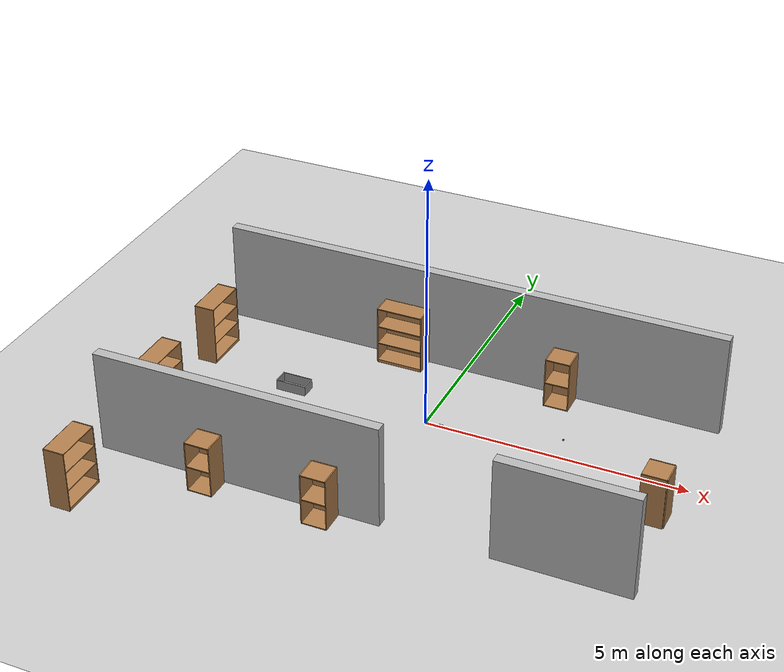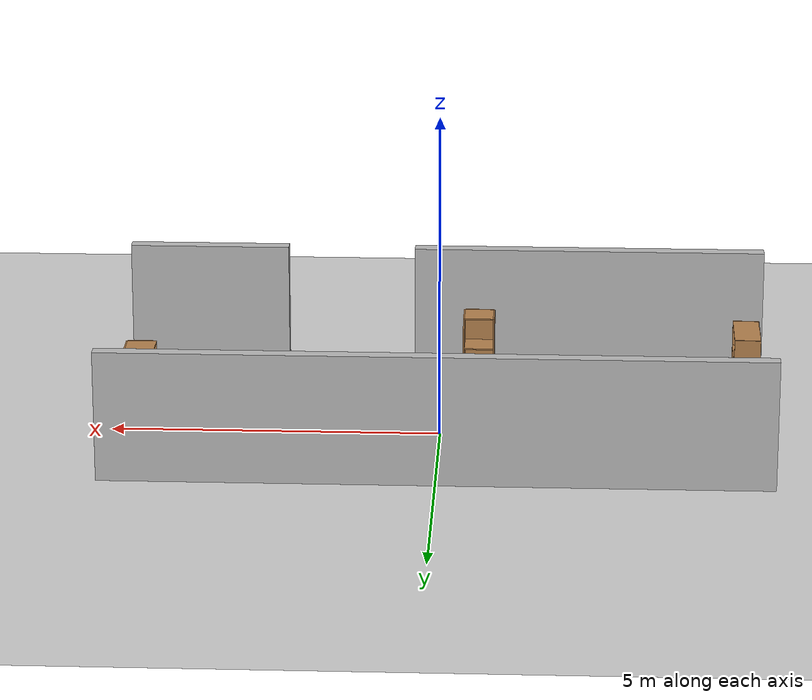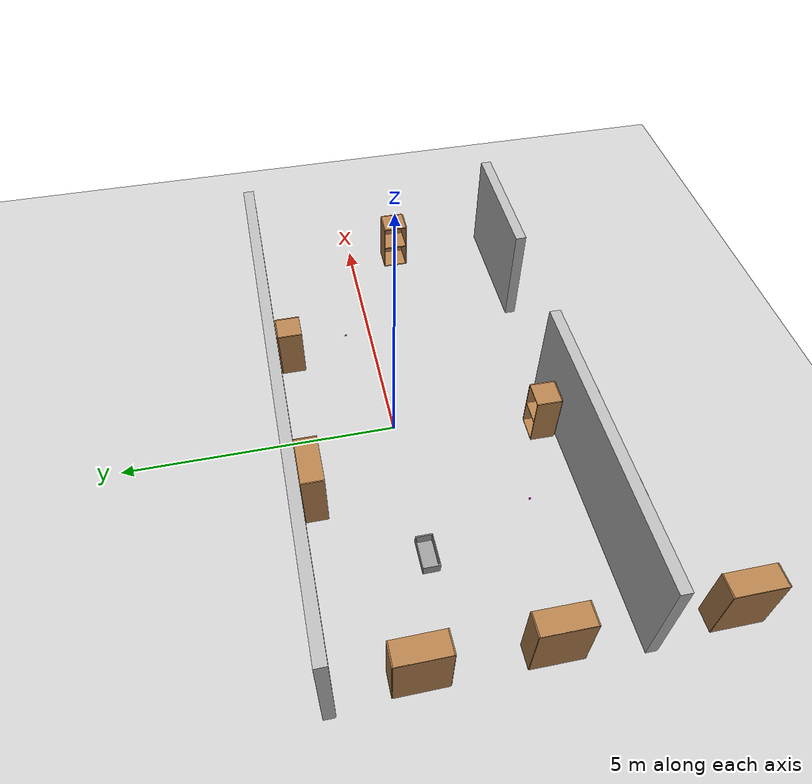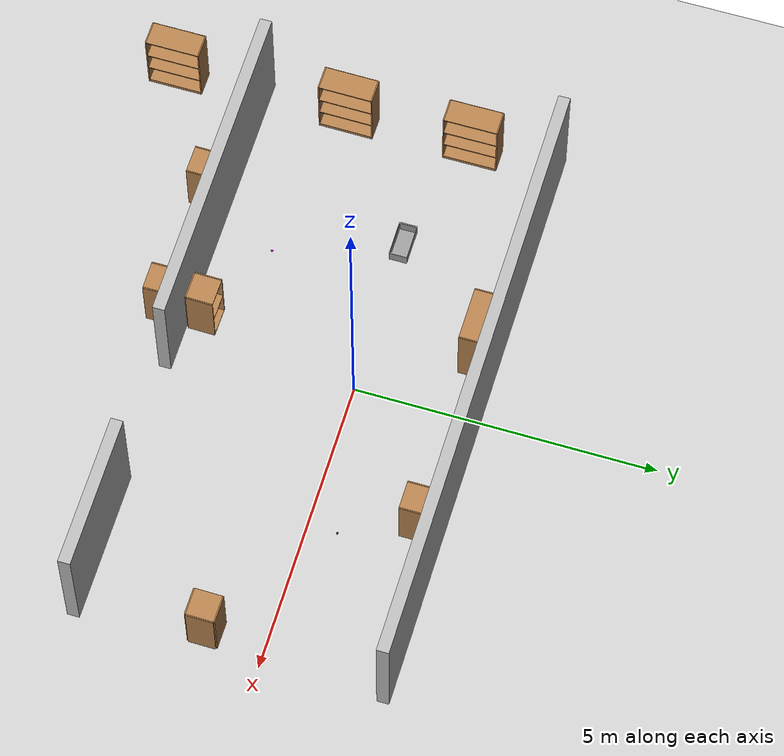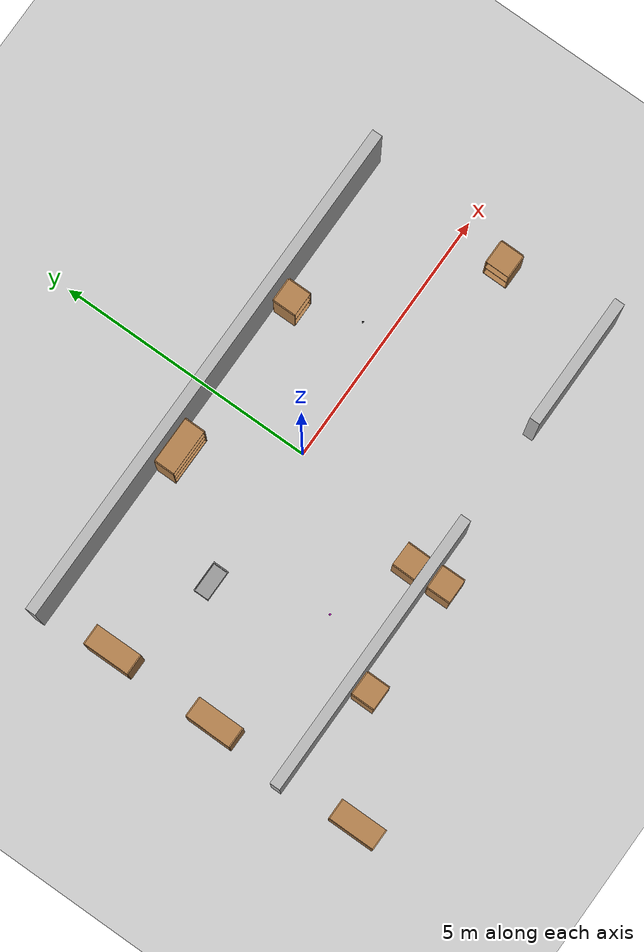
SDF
<sdf version="1.7">
 <world name="default">
  <model name="ground_plane">
   <static>1</static>
   <link name="link">
    <collision name="collision">
     <geometry><plane><normal>0 0 1</normal><size>100 100</size></plane></geometry>
     <surface><friction><ode><mu>100</mu><mu2>50</mu2></ode></friction></surface>
    </collision>
    <visual name="visual">
     <cast_shadows>0</cast_shadows>
     <geometry><plane><normal>0 0 1</normal><size>100 100</size></plane></geometry>
     <material>
      <script><uri>file://media/materials/scripts/gazebo.material</uri><name>Gazebo/Grey</name></script>
     </material>
    </visual>
    <velocity_decay><linear>0</linear><angular>0</angular></velocity_decay>
   </link>
  </model>
  <model name="wall_2_model">
   <pose>0 2 1 0 -0 0</pose>
   <static>1</static>
   <link name="wall_2_body">
    <inertial>
     <mass>1</mass>
     <inertia><ixx>1</ixx><ixy>0</ixy><ixz>0</ixz><iyy>1</iyy><iyz>0</iyz><izz>1</izz></inertia>
    </inertial>
    <collision name="collision"><geometry><box><size>10 0.2 2</size></box></geometry></collision>
    <visual name="visual"><geometry><box><size>10 0.2 2</size></box></geometry></visual>
    <velocity_decay><linear>0</linear><angular>0</angular></velocity_decay>
   </link>
  </model>
  <model name="wall_5_model">
   <pose>-2.25 -3 1 0 -0 0</pose>
   <static>1</static>
   <link name="wall_5_body">
    <inertial>
     <mass>1</mass>
     <inertia><ixx>1</ixx><ixy>0</ixy><ixz>0</ixz><iyy>1</iyy><iyz>0</iyz><izz>1</izz></inertia>
    </inertial>
    <collision name="collision"><geometry><box><size>5.5 0.2 2</size></box></geometry></collision>
    <visual name="visual"><geometry><box><size>5.5 0.2 2</size></box></geometry></visual>
    <velocity_decay><linear>0</linear><angular>0</angular></velocity_decay>
   </link>
  </model>
  <model name="wall_6_model">
   <pose>3.75 -3 1 0 -0 0</pose>
   <static>1</static>
   <link name="wall_6_body">
    <inertial>
     <mass>1</mass>
     <inertia><ixx>1</ixx><ixy>0</ixy><ixz>0</ixz><iyy>1</iyy><iyz>0</iyz><izz>1</izz></inertia>
    </inertial>
    <collision name="collision"><geometry><box><size>2.5 0.2 2</size></box></geometry></collision>
    <visual name="visual"><geometry><box><size>2.5 0.2 2</size></box></geometry></visual>
    <velocity_decay><linear>0</linear><angular>0</angular></velocity_decay>
   </link>
  </model>
  <model name="cabinet">
   <static>0</static>
   <link name="cabinet_bottom_plate">
    <inertial>
     <pose>0 0 -1 0 -0 0</pose>
     <inertia><ixx>2.05</ixx><ixy>0</ixy><ixz>0</ixz><iyy>2.05</iyy><iyz>0</iyz><izz>2.05</izz></inertia>
     <mass>25</mass>
    </inertial>
    <collision name="cabinet_bottom_plate_geom">
     <pose>0 0 0.01 0 -0 0</pose>
     <geometry><box><size>0.45 0.45 0.02</size></box></geometry>
    </collision>
    <visual name="cabinet_bottom_plate_geom_visual">
     <pose>0 0 0.01 0 -0 0</pose>
     <geometry><box><size>0.45 0.45 0.02</size></box></geometry>
     <material>
      <script><uri>file://media/materials/scripts/gazebo.material</uri><name>Gazebo/Wood</name></script>
     </material>
    </visual>
    <collision name="cabinet_bottom_plate_geom_cabinet_back_plate">
     <pose>0.235 0 0.51 0 -0 0</pose>
     <geometry><box><size>0.02 0.45 1.02</size></box></geometry>
    </collision>
    <visual name="cabinet_bottom_plate_geom_cabinet_back_plate_visual">
     <pose>0.235 0 0.51 0 -0 0</pose>
     <geometry><box><size>0.02 0.45 1.02</size></box></geometry>
     <material>
      <script><uri>file://media/materials/scripts/gazebo.material</uri><name>Gazebo/Wood</name></script>
     </material>
    </visual>
    <collision name="cabinet_bottom_plate_geom_cabinet_left_plate">
     <pose>0 0.235 0.51 0 -0 0</pose>
     <geometry><box><size>0.45 0.02 1.02</size></box></geometry>
    </collision>
    <visual name="cabinet_bottom_plate_geom_cabinet_left_plate_visual">
     <pose>0 0.235 0.51 0 -0 0</pose>
     <geometry><box><size>0.45 0.02 1.02</size></box></geometry>
     <material>
      <script><uri>file://media/materials/scripts/gazebo.material</uri><name>Gazebo/Wood</name></script>
     </material>
    </visual>
    <collision name="cabinet_bottom_plate_geom_cabinet_middle_plate">
     <pose>0 0 0.51 0 -0 0</pose>
     <geometry><box><size>0.45 0.45 0.02</size></box></geometry>
    </collision>
    <visual name="cabinet_bottom_plate_geom_cabinet_middle_plate_visual">
     <pose>0 0 0.51 0 -0 0</pose>
     <geometry><box><size>0.45 0.45 0.02</size></box></geometry>
     <material>
      <script><uri>file://media/materials/scripts/gazebo.material</uri><name>Gazebo/Wood</name></script>
     </material>
    </visual>
    <collision name="cabinet_bottom_plate_geom_cabinet_right_plate">
     <pose>0 -0.235 0.51 0 -0 0</pose>
     <geometry><box><size>0.45 0.02 1.02</size></box></geometry>
    </collision>
    <visual name="cabinet_bottom_plate_geom_cabinet_right_plate_visual">
     <pose>0 -0.235 0.51 0 -0 0</pose>
     <geometry><box><size>0.45 0.02 1.02</size></box></geometry>
     <material>
      <script><uri>file://media/materials/scripts/gazebo.material</uri><name>Gazebo/Wood</name></script>
     </material>
    </visual>
    <collision name="cabinet_bottom_plate_geom_cabinet_top_plate">
     <pose>0 0 1.01 0 -0 0</pose>
     <geometry><box><size>0.45 0.45 0.02</size></box></geometry>
    </collision>
    <visual name="cabinet_bottom_plate_geom_cabinet_top_plate_visual">
     <pose>0 0 1.01 0 -0 0</pose>
     <geometry><box><size>0.45 0.45 0.02</size></box></geometry>
     <material>
      <script><uri>file://media/materials/scripts/gazebo.material</uri><name>Gazebo/Wood</name></script>
     </material>
    </visual>
    <velocity_decay><linear>0</linear><angular>0</angular></velocity_decay>
   </link>
   <pose>2.00217 1.64704 -1e-06 -2e-06 1e-06 1.57264</pose>
  </model>
  <model name="bookshelf_0">
   <static>0</static>
   <link name="link">
    <inertial>
     <mass>1</mass>
     <inertia><ixx>1</ixx><ixy>0</ixy><ixz>0</ixz><iyy>1</iyy><iyz>0</iyz><izz>1</izz></inertia>
    </inertial>
    <collision name="back">
     <pose>0 0.005 0.6 0 -0 0</pose>
     <geometry><box><size>0.9 0.01 1.2</size></box></geometry>
    </collision>
    <visual name="visual1">
     <pose>0 0.005 0.6 0 -0 0</pose>
     <geometry><box><size>0.9 0.01 1.2</size></box></geometry>
     <material>
      <script><uri>file://media/materials/scripts/gazebo.material</uri><name>Gazebo/Wood</name></script>
     </material>
    </visual>
    <collision name="left_side">
     <pose>0.45 -0.195 0.6 0 -0 0</pose>
     <geometry><box><size>0.02 0.4 1.2</size></box></geometry>
    </collision>
    <visual name="visual2">
     <pose>0.45 -0.195 0.6 0 -0 0</pose>
     <geometry><box><size>0.02 0.4 1.2</size></box></geometry>
     <material>
      <script><uri>file://media/materials/scripts/gazebo.material</uri><name>Gazebo/Wood</name></script>
     </material>
    </visual>
    <collision name="right_side">
     <pose>-0.45 -0.195 0.6 0 -0 0</pose>
     <geometry><box><size>0.02 0.4 1.2</size></box></geometry>
    </collision>
    <visual name="visual3">
     <pose>-0.45 -0.195 0.6 0 -0 0</pose>
     <geometry><box><size>0.02 0.4 1.2</size></box></geometry>
     <material>
      <script><uri>file://media/materials/scripts/gazebo.material</uri><name>Gazebo/Wood</name></script>
     </material>
    </visual>
    <collision name="bottom">
     <pose>0 -0.195 0.03 0 -0 0</pose>
     <geometry><box><size>0.88 0.4 0.06</size></box></geometry>
    </collision>
    <visual name="visual4">
     <pose>0 -0.195 0.03 0 -0 0</pose>
     <geometry><box><size>0.88 0.4 0.06</size></box></geometry>
     <material>
      <script><uri>file://media/materials/scripts/gazebo.material</uri><name>Gazebo/Wood</name></script>
     </material>
    </visual>
    <collision name="top">
     <pose>0 -0.195 1.19 0 -0 0</pose>
     <geometry><box><size>0.88 0.4 0.02</size></box></geometry>
    </collision>
    <visual name="visual5">
     <pose>0 -0.195 1.19 0 -0 0</pose>
     <geometry><box><size>0.88 0.4 0.02</size></box></geometry>
     <material>
      <script><uri>file://media/materials/scripts/gazebo.material</uri><name>Gazebo/Wood</name></script>
     </material>
    </visual>
    <collision name="low_shelf">
     <pose>0 -0.195 0.43 0 -0 0</pose>
     <geometry><box><size>0.88 0.4 0.02</size></box></geometry>
    </collision>
    <visual name="visual6">
     <pose>0 -0.195 0.43 0 -0 0</pose>
     <geometry><box><size>0.88 0.4 0.02</size></box></geometry>
     <material>
      <script><uri>file://media/materials/scripts/gazebo.material</uri><name>Gazebo/Wood</name></script>
     </material>
    </visual>
    <collision name="high_shelf">
     <pose>0 -0.195 0.8 0 -0 0</pose>
     <geometry><box><size>0.88 0.4 0.02</size></box></geometry>
    </collision>
    <visual name="visual7">
     <pose>0 -0.195 0.8 0 -0 0</pose>
     <geometry><box><size>0.88 0.4 0.02</size></box></geometry>
     <material>
      <script><uri>file://media/materials/scripts/gazebo.material</uri><name>Gazebo/Wood</name></script>
     </material>
    </visual>
    <velocity_decay><linear>0</linear><angular>0</angular></velocity_decay>
   </link>
   <pose>-4.88413 -1.51974 1e-06 0 1e-06 1.56443</pose>
  </model>
  <model name="bookshelf_1">
   <static>0</static>
   <link name="link">
    <inertial>
     <mass>1</mass>
     <inertia><ixx>1</ixx><ixy>0</ixy><ixz>0</ixz><iyy>1</iyy><iyz>0</iyz><izz>1</izz></inertia>
    </inertial>
    <collision name="back">
     <pose>0 0.005 0.6 0 -0 0</pose>
     <geometry><box><size>0.9 0.01 1.2</size></box></geometry>
    </collision>
    <visual name="visual1">
     <pose>0 0.005 0.6 0 -0 0</pose>
     <geometry><box><size>0.9 0.01 1.2</size></box></geometry>
     <material>
      <script><uri>file://media/materials/scripts/gazebo.material</uri><name>Gazebo/Wood</name></script>
     </material>
    </visual>
    <collision name="left_side">
     <pose>0.45 -0.195 0.6 0 -0 0</pose>
     <geometry><box><size>0.02 0.4 1.2</size></box></geometry>
    </collision>
    <visual name="visual2">
     <pose>0.45 -0.195 0.6 0 -0 0</pose>
     <geometry><box><size>0.02 0.4 1.2</size></box></geometry>
     <material>
      <script><uri>file://media/materials/scripts/gazebo.material</uri><name>Gazebo/Wood</name></script>
     </material>
    </visual>
    <collision name="right_side">
     <pose>-0.45 -0.195 0.6 0 -0 0</pose>
     <geometry><box><size>0.02 0.4 1.2</size></box></geometry>
    </collision>
    <visual name="visual3">
     <pose>-0.45 -0.195 0.6 0 -0 0</pose>
     <geometry><box><size>0.02 0.4 1.2</size></box></geometry>
     <material>
      <script><uri>file://media/materials/scripts/gazebo.material</uri><name>Gazebo/Wood</name></script>
     </material>
    </visual>
    <collision name="bottom">
     <pose>0 -0.195 0.03 0 -0 0</pose>
     <geometry><box><size>0.88 0.4 0.06</size></box></geometry>
    </collision>
    <visual name="visual4">
     <pose>0 -0.195 0.03 0 -0 0</pose>
     <geometry><box><size>0.88 0.4 0.06</size></box></geometry>
     <material>
      <script><uri>file://media/materials/scripts/gazebo.material</uri><name>Gazebo/Wood</name></script>
     </material>
    </visual>
    <collision name="top">
     <pose>0 -0.195 1.19 0 -0 0</pose>
     <geometry><box><size>0.88 0.4 0.02</size></box></geometry>
    </collision>
    <visual name="visual5">
     <pose>0 -0.195 1.19 0 -0 0</pose>
     <geometry><box><size>0.88 0.4 0.02</size></box></geometry>
     <material>
      <script><uri>file://media/materials/scripts/gazebo.material</uri><name>Gazebo/Wood</name></script>
     </material>
    </visual>
    <collision name="low_shelf">
     <pose>0 -0.195 0.43 0 -0 0</pose>
     <geometry><box><size>0.88 0.4 0.02</size></box></geometry>
    </collision>
    <visual name="visual6">
     <pose>0 -0.195 0.43 0 -0 0</pose>
     <geometry><box><size>0.88 0.4 0.02</size></box></geometry>
     <material>
      <script><uri>file://media/materials/scripts/gazebo.material</uri><name>Gazebo/Wood</name></script>
     </material>
    </visual>
    <collision name="high_shelf">
     <pose>0 -0.195 0.8 0 -0 0</pose>
     <geometry><box><size>0.88 0.4 0.02</size></box></geometry>
    </collision>
    <visual name="visual7">
     <pose>0 -0.195 0.8 0 -0 0</pose>
     <geometry><box><size>0.88 0.4 0.02</size></box></geometry>
     <material>
      <script><uri>file://media/materials/scripts/gazebo.material</uri><name>Gazebo/Wood</name></script>
     </material>
    </visual>
    <velocity_decay><linear>0</linear><angular>0</angular></velocity_decay>
   </link>
   <pose>-4.88539 0.594654 -1e-06 0 3e-06 1.57477</pose>
  </model>
  <model name="cabinet_1">
   <static>0</static>
   <link name="cabinet_bottom_plate">
    <inertial>
     <pose>0 0 -1 0 -0 0</pose>
     <inertia><ixx>2.05</ixx><ixy>0</ixy><ixz>0</ixz><iyy>2.05</iyy><iyz>0</iyz><izz>2.05</izz></inertia>
     <mass>25</mass>
    </inertial>
    <collision name="cabinet_bottom_plate_geom">
     <pose>0 0 0.01 0 -0 0</pose>
     <geometry><box><size>0.45 0.45 0.02</size></box></geometry>
    </collision>
    <visual name="cabinet_bottom_plate_geom_visual">
     <pose>0 0 0.01 0 -0 0</pose>
     <geometry><box><size>0.45 0.45 0.02</size></box></geometry>
     <material>
      <script><uri>file://media/materials/scripts/gazebo.material</uri><name>Gazebo/Wood</name></script>
     </material>
    </visual>
    <collision name="cabinet_bottom_plate_geom_cabinet_back_plate">
     <pose>0.235 0 0.51 0 -0 0</pose>
     <geometry><box><size>0.02 0.45 1.02</size></box></geometry>
    </collision>
    <visual name="cabinet_bottom_plate_geom_cabinet_back_plate_visual">
     <pose>0.235 0 0.51 0 -0 0</pose>
     <geometry><box><size>0.02 0.45 1.02</size></box></geometry>
     <material>
      <script><uri>file://media/materials/scripts/gazebo.material</uri><name>Gazebo/Wood</name></script>
     </material>
    </visual>
    <collision name="cabinet_bottom_plate_geom_cabinet_left_plate">
     <pose>0 0.235 0.51 0 -0 0</pose>
     <geometry><box><size>0.45 0.02 1.02</size></box></geometry>
    </collision>
    <visual name="cabinet_bottom_plate_geom_cabinet_left_plate_visual">
     <pose>0 0.235 0.51 0 -0 0</pose>
     <geometry><box><size>0.45 0.02 1.02</size></box></geometry>
     <material>
      <script><uri>file://media/materials/scripts/gazebo.material</uri><name>Gazebo/Wood</name></script>
     </material>
    </visual>
    <collision name="cabinet_bottom_plate_geom_cabinet_middle_plate">
     <pose>0 0 0.51 0 -0 0</pose>
     <geometry><box><size>0.45 0.45 0.02</size></box></geometry>
    </collision>
    <visual name="cabinet_bottom_plate_geom_cabinet_middle_plate_visual">
     <pose>0 0 0.51 0 -0 0</pose>
     <geometry><box><size>0.45 0.45 0.02</size></box></geometry>
     <material>
      <script><uri>file://media/materials/scripts/gazebo.material</uri><name>Gazebo/Wood</name></script>
     </material>
    </visual>
    <collision name="cabinet_bottom_plate_geom_cabinet_right_plate">
     <pose>0 -0.235 0.51 0 -0 0</pose>
     <geometry><box><size>0.45 0.02 1.02</size></box></geometry>
    </collision>
    <visual name="cabinet_bottom_plate_geom_cabinet_right_plate_visual">
     <pose>0 -0.235 0.51 0 -0 0</pose>
     <geometry><box><size>0.45 0.02 1.02</size></box></geometry>
     <material>
      <script><uri>file://media/materials/scripts/gazebo.material</uri><name>Gazebo/Wood</name></script>
     </material>
    </visual>
    <collision name="cabinet_bottom_plate_geom_cabinet_top_plate">
     <pose>0 0 1.01 0 -0 0</pose>
     <geometry><box><size>0.45 0.45 0.02</size></box></geometry>
    </collision>
    <visual name="cabinet_bottom_plate_geom_cabinet_top_plate_visual">
     <pose>0 0 1.01 0 -0 0</pose>
     <geometry><box><size>0.45 0.45 0.02</size></box></geometry>
     <material>
      <script><uri>file://media/materials/scripts/gazebo.material</uri><name>Gazebo/Wood</name></script>
     </material>
    </visual>
    <velocity_decay><linear>0</linear><angular>0</angular></velocity_decay>
   </link>
   <pose>-2.72476 -3.35344 1e-06 -0 -3e-06 1.56613</pose>
  </model>
  <model name="cabinet_2">
   <static>0</static>
   <link name="cabinet_bottom_plate">
    <inertial>
     <pose>0 0 -1 0 -0 0</pose>
     <inertia><ixx>2.05</ixx><ixy>0</ixy><ixz>0</ixz><iyy>2.05</iyy><iyz>0</iyz><izz>2.05</izz></inertia>
     <mass>25</mass>
    </inertial>
    <collision name="cabinet_bottom_plate_geom">
     <pose>0 0 0.01 0 -0 0</pose>
     <geometry><box><size>0.45 0.45 0.02</size></box></geometry>
    </collision>
    <visual name="cabinet_bottom_plate_geom_visual">
     <pose>0 0 0.01 0 -0 0</pose>
     <geometry><box><size>0.45 0.45 0.02</size></box></geometry>
     <material>
      <script><uri>file://media/materials/scripts/gazebo.material</uri><name>Gazebo/Wood</name></script>
     </material>
    </visual>
    <collision name="cabinet_bottom_plate_geom_cabinet_back_plate">
     <pose>0.235 0 0.51 0 -0 0</pose>
     <geometry><box><size>0.02 0.45 1.02</size></box></geometry>
    </collision>
    <visual name="cabinet_bottom_plate_geom_cabinet_back_plate_visual">
     <pose>0.235 0 0.51 0 -0 0</pose>
     <geometry><box><size>0.02 0.45 1.02</size></box></geometry>
     <material>
      <script><uri>file://media/materials/scripts/gazebo.material</uri><name>Gazebo/Wood</name></script>
     </material>
    </visual>
    <collision name="cabinet_bottom_plate_geom_cabinet_left_plate">
     <pose>0 0.235 0.51 0 -0 0</pose>
     <geometry><box><size>0.45 0.02 1.02</size></box></geometry>
    </collision>
    <visual name="cabinet_bottom_plate_geom_cabinet_left_plate_visual">
     <pose>0 0.235 0.51 0 -0 0</pose>
     <geometry><box><size>0.45 0.02 1.02</size></box></geometry>
     <material>
      <script><uri>file://media/materials/scripts/gazebo.material</uri><name>Gazebo/Wood</name></script>
     </material>
    </visual>
    <collision name="cabinet_bottom_plate_geom_cabinet_middle_plate">
     <pose>0 0 0.51 0 -0 0</pose>
     <geometry><box><size>0.45 0.45 0.02</size></box></geometry>
    </collision>
    <visual name="cabinet_bottom_plate_geom_cabinet_middle_plate_visual">
     <pose>0 0 0.51 0 -0 0</pose>
     <geometry><box><size>0.45 0.45 0.02</size></box></geometry>
     <material>
      <script><uri>file://media/materials/scripts/gazebo.material</uri><name>Gazebo/Wood</name></script>
     </material>
    </visual>
    <collision name="cabinet_bottom_plate_geom_cabinet_right_plate">
     <pose>0 -0.235 0.51 0 -0 0</pose>
     <geometry><box><size>0.45 0.02 1.02</size></box></geometry>
    </collision>
    <visual name="cabinet_bottom_plate_geom_cabinet_right_plate_visual">
     <pose>0 -0.235 0.51 0 -0 0</pose>
     <geometry><box><size>0.45 0.02 1.02</size></box></geometry>
     <material>
      <script><uri>file://media/materials/scripts/gazebo.material</uri><name>Gazebo/Wood</name></script>
     </material>
    </visual>
    <collision name="cabinet_bottom_plate_geom_cabinet_top_plate">
     <pose>0 0 1.01 0 -0 0</pose>
     <geometry><box><size>0.45 0.45 0.02</size></box></geometry>
    </collision>
    <visual name="cabinet_bottom_plate_geom_cabinet_top_plate_visual">
     <pose>0 0 1.01 0 -0 0</pose>
     <geometry><box><size>0.45 0.45 0.02</size></box></geometry>
     <material>
      <script><uri>file://media/materials/scripts/gazebo.material</uri><name>Gazebo/Wood</name></script>
     </material>
    </visual>
    <velocity_decay><linear>0</linear><angular>0</angular></velocity_decay>
   </link>
   <pose>-0.506055 -3.35059 0 0 2e-06 1.57749</pose>
  </model>
  <model name="cabinet_3">
   <static>0</static>
   <link name="cabinet_bottom_plate">
    <inertial>
     <pose>0 0 -1 0 -0 0</pose>
     <inertia><ixx>2.05</ixx><ixy>0</ixy><ixz>0</ixz><iyy>2.05</iyy><iyz>0</iyz><izz>2.05</izz></inertia>
     <mass>25</mass>
    </inertial>
    <collision name="cabinet_bottom_plate_geom">
     <pose>0 0 0.01 0 -0 0</pose>
     <geometry><box><size>0.45 0.45 0.02</size></box></geometry>
    </collision>
    <visual name="cabinet_bottom_plate_geom_visual">
     <pose>0 0 0.01 0 -0 0</pose>
     <geometry><box><size>0.45 0.45 0.02</size></box></geometry>
     <material>
      <script><uri>file://media/materials/scripts/gazebo.material</uri><name>Gazebo/Wood</name></script>
     </material>
    </visual>
    <collision name="cabinet_bottom_plate_geom_cabinet_back_plate">
     <pose>0.235 0 0.51 0 -0 0</pose>
     <geometry><box><size>0.02 0.45 1.02</size></box></geometry>
    </collision>
    <visual name="cabinet_bottom_plate_geom_cabinet_back_plate_visual">
     <pose>0.235 0 0.51 0 -0 0</pose>
     <geometry><box><size>0.02 0.45 1.02</size></box></geometry>
     <material>
      <script><uri>file://media/materials/scripts/gazebo.material</uri><name>Gazebo/Wood</name></script>
     </material>
    </visual>
    <collision name="cabinet_bottom_plate_geom_cabinet_left_plate">
     <pose>0 0.235 0.51 0 -0 0</pose>
     <geometry><box><size>0.45 0.02 1.02</size></box></geometry>
    </collision>
    <visual name="cabinet_bottom_plate_geom_cabinet_left_plate_visual">
     <pose>0 0.235 0.51 0 -0 0</pose>
     <geometry><box><size>0.45 0.02 1.02</size></box></geometry>
     <material>
      <script><uri>file://media/materials/scripts/gazebo.material</uri><name>Gazebo/Wood</name></script>
     </material>
    </visual>
    <collision name="cabinet_bottom_plate_geom_cabinet_middle_plate">
     <pose>0 0 0.51 0 -0 0</pose>
     <geometry><box><size>0.45 0.45 0.02</size></box></geometry>
    </collision>
    <visual name="cabinet_bottom_plate_geom_cabinet_middle_plate_visual">
     <pose>0 0 0.51 0 -0 0</pose>
     <geometry><box><size>0.45 0.45 0.02</size></box></geometry>
     <material>
      <script><uri>file://media/materials/scripts/gazebo.material</uri><name>Gazebo/Wood</name></script>
     </material>
    </visual>
    <collision name="cabinet_bottom_plate_geom_cabinet_right_plate">
     <pose>0 -0.235 0.51 0 -0 0</pose>
     <geometry><box><size>0.45 0.02 1.02</size></box></geometry>
    </collision>
    <visual name="cabinet_bottom_plate_geom_cabinet_right_plate_visual">
     <pose>0 -0.235 0.51 0 -0 0</pose>
     <geometry><box><size>0.45 0.02 1.02</size></box></geometry>
     <material>
      <script><uri>file://media/materials/scripts/gazebo.material</uri><name>Gazebo/Wood</name></script>
     </material>
    </visual>
    <collision name="cabinet_bottom_plate_geom_cabinet_top_plate">
     <pose>0 0 1.01 0 -0 0</pose>
     <geometry><box><size>0.45 0.45 0.02</size></box></geometry>
    </collision>
    <visual name="cabinet_bottom_plate_geom_cabinet_top_plate_visual">
     <pose>0 0 1.01 0 -0 0</pose>
     <geometry><box><size>0.45 0.45 0.02</size></box></geometry>
     <material>
      <script><uri>file://media/materials/scripts/gazebo.material</uri><name>Gazebo/Wood</name></script>
     </material>
    </visual>
    <velocity_decay><linear>0</linear><angular>0</angular></velocity_decay>
   </link>
   <pose>4.65389 -0.942113 1e-06 -5e-06 -0 -0.004882</pose>
  </model>
  <model name="bookshelf_6">
   <static>0</static>
   <link name="link">
    <inertial>
     <mass>1</mass>
     <inertia><ixx>1</ixx><ixy>0</ixy><ixz>0</ixz><iyy>1</iyy><iyz>0</iyz><izz>1</izz></inertia>
    </inertial>
    <collision name="back">
     <pose>0 0.005 0.6 0 -0 0</pose>
     <geometry><box><size>0.9 0.01 1.2</size></box></geometry>
    </collision>
    <visual name="visual1">
     <pose>0 0.005 0.6 0 -0 0</pose>
     <geometry><box><size>0.9 0.01 1.2</size></box></geometry>
     <material>
      <script><uri>file://media/materials/scripts/gazebo.material</uri><name>Gazebo/Wood</name></script>
     </material>
    </visual>
    <collision name="left_side">
     <pose>0.45 -0.195 0.6 0 -0 0</pose>
     <geometry><box><size>0.02 0.4 1.2</size></box></geometry>
    </collision>
    <visual name="visual2">
     <pose>0.45 -0.195 0.6 0 -0 0</pose>
     <geometry><box><size>0.02 0.4 1.2</size></box></geometry>
     <material>
      <script><uri>file://media/materials/scripts/gazebo.material</uri><name>Gazebo/Wood</name></script>
     </material>
    </visual>
    <collision name="right_side">
     <pose>-0.45 -0.195 0.6 0 -0 0</pose>
     <geometry><box><size>0.02 0.4 1.2</size></box></geometry>
    </collision>
    <visual name="visual3">
     <pose>-0.45 -0.195 0.6 0 -0 0</pose>
     <geometry><box><size>0.02 0.4 1.2</size></box></geometry>
     <material>
      <script><uri>file://media/materials/scripts/gazebo.material</uri><name>Gazebo/Wood</name></script>
     </material>
    </visual>
    <collision name="bottom">
     <pose>0 -0.195 0.03 0 -0 0</pose>
     <geometry><box><size>0.88 0.4 0.06</size></box></geometry>
    </collision>
    <visual name="visual4">
     <pose>0 -0.195 0.03 0 -0 0</pose>
     <geometry><box><size>0.88 0.4 0.06</size></box></geometry>
     <material>
      <script><uri>file://media/materials/scripts/gazebo.material</uri><name>Gazebo/Wood</name></script>
     </material>
    </visual>
    <collision name="top">
     <pose>0 -0.195 1.19 0 -0 0</pose>
     <geometry><box><size>0.88 0.4 0.02</size></box></geometry>
    </collision>
    <visual name="visual5">
     <pose>0 -0.195 1.19 0 -0 0</pose>
     <geometry><box><size>0.88 0.4 0.02</size></box></geometry>
     <material>
      <script><uri>file://media/materials/scripts/gazebo.material</uri><name>Gazebo/Wood</name></script>
     </material>
    </visual>
    <collision name="low_shelf">
     <pose>0 -0.195 0.43 0 -0 0</pose>
     <geometry><box><size>0.88 0.4 0.02</size></box></geometry>
    </collision>
    <visual name="visual6">
     <pose>0 -0.195 0.43 0 -0 0</pose>
     <geometry><box><size>0.88 0.4 0.02</size></box></geometry>
     <material>
      <script><uri>file://media/materials/scripts/gazebo.material</uri><name>Gazebo/Wood</name></script>
     </material>
    </visual>
    <collision name="high_shelf">
     <pose>0 -0.195 0.8 0 -0 0</pose>
     <geometry><box><size>0.88 0.4 0.02</size></box></geometry>
    </collision>
    <visual name="visual7">
     <pose>0 -0.195 0.8 0 -0 0</pose>
     <geometry><box><size>0.88 0.4 0.02</size></box></geometry>
     <material>
      <script><uri>file://media/materials/scripts/gazebo.material</uri><name>Gazebo/Wood</name></script>
     </material>
    </visual>
    <velocity_decay><linear>0</linear><angular>0</angular></velocity_decay>
   </link>
   <pose>-4.88331 -4.47455 -1e-06 0 3e-06 1.57025</pose>
  </model>
  <model name="cabinet_4">
   <static>0</static>
   <link name="cabinet_bottom_plate">
    <inertial>
     <pose>0 0 -1 0 -0 0</pose>
     <inertia><ixx>2.05</ixx><ixy>0</ixy><ixz>0</ixz><iyy>2.05</iyy><iyz>0</iyz><izz>2.05</izz></inertia>
     <mass>25</mass>
    </inertial>
    <collision name="cabinet_bottom_plate_geom">
     <pose>0 0 0.01 0 -0 0</pose>
     <geometry><box><size>0.45 0.45 0.02</size></box></geometry>
    </collision>
    <visual name="cabinet_bottom_plate_geom_visual">
     <pose>0 0 0.01 0 -0 0</pose>
     <geometry><box><size>0.45 0.45 0.02</size></box></geometry>
     <material>
      <script><uri>file://media/materials/scripts/gazebo.material</uri><name>Gazebo/Wood</name></script>
     </material>
    </visual>
    <collision name="cabinet_bottom_plate_geom_cabinet_back_plate">
     <pose>0.235 0 0.51 0 -0 0</pose>
     <geometry><box><size>0.02 0.45 1.02</size></box></geometry>
    </collision>
    <visual name="cabinet_bottom_plate_geom_cabinet_back_plate_visual">
     <pose>0.235 0 0.51 0 -0 0</pose>
     <geometry><box><size>0.02 0.45 1.02</size></box></geometry>
     <material>
      <script><uri>file://media/materials/scripts/gazebo.material</uri><name>Gazebo/Wood</name></script>
     </material>
    </visual>
    <collision name="cabinet_bottom_plate_geom_cabinet_left_plate">
     <pose>0 0.235 0.51 0 -0 0</pose>
     <geometry><box><size>0.45 0.02 1.02</size></box></geometry>
    </collision>
    <visual name="cabinet_bottom_plate_geom_cabinet_left_plate_visual">
     <pose>0 0.235 0.51 0 -0 0</pose>
     <geometry><box><size>0.45 0.02 1.02</size></box></geometry>
     <material>
      <script><uri>file://media/materials/scripts/gazebo.material</uri><name>Gazebo/Wood</name></script>
     </material>
    </visual>
    <collision name="cabinet_bottom_plate_geom_cabinet_middle_plate">
     <pose>0 0 0.51 0 -0 0</pose>
     <geometry><box><size>0.45 0.45 0.02</size></box></geometry>
    </collision>
    <visual name="cabinet_bottom_plate_geom_cabinet_middle_plate_visual">
     <pose>0 0 0.51 0 -0 0</pose>
     <geometry><box><size>0.45 0.45 0.02</size></box></geometry>
     <material>
      <script><uri>file://media/materials/scripts/gazebo.material</uri><name>Gazebo/Wood</name></script>
     </material>
    </visual>
    <collision name="cabinet_bottom_plate_geom_cabinet_right_plate">
     <pose>0 -0.235 0.51 0 -0 0</pose>
     <geometry><box><size>0.45 0.02 1.02</size></box></geometry>
    </collision>
    <visual name="cabinet_bottom_plate_geom_cabinet_right_plate_visual">
     <pose>0 -0.235 0.51 0 -0 0</pose>
     <geometry><box><size>0.45 0.02 1.02</size></box></geometry>
     <material>
      <script><uri>file://media/materials/scripts/gazebo.material</uri><name>Gazebo/Wood</name></script>
     </material>
    </visual>
    <collision name="cabinet_bottom_plate_geom_cabinet_top_plate">
     <pose>0 0 1.01 0 -0 0</pose>
     <geometry><box><size>0.45 0.45 0.02</size></box></geometry>
    </collision>
    <visual name="cabinet_bottom_plate_geom_cabinet_top_plate_visual">
     <pose>0 0 1.01 0 -0 0</pose>
     <geometry><box><size>0.45 0.45 0.02</size></box></geometry>
     <material>
      <script><uri>file://media/materials/scripts/gazebo.material</uri><name>Gazebo/Wood</name></script>
     </material>
    </visual>
    <velocity_decay><linear>0</linear><angular>0</angular></velocity_decay>
   </link>
   <pose>-0.526606 -2.63898 0 0 -1e-06 -1.58479</pose>
  </model>
  <model name="bookshelf_clone">
   <static>0</static>
   <link name="link">
    <inertial>
     <mass>1</mass>
     <inertia><ixx>1</ixx><ixy>0</ixy><ixz>0</ixz><iyy>1</iyy><iyz>0</iyz><izz>1</izz></inertia>
    </inertial>
    <collision name="back">
     <pose>0 0.005 0.6 0 -0 0</pose>
     <geometry><box><size>0.9 0.01 1.2</size></box></geometry>
    </collision>
    <visual name="visual1">
     <pose>0 0.005 0.6 0 -0 0</pose>
     <geometry><box><size>0.9 0.01 1.2</size></box></geometry>
     <material>
      <script><uri>file://media/materials/scripts/gazebo.material</uri><name>Gazebo/Wood</name></script>
     </material>
    </visual>
    <collision name="left_side">
     <pose>0.45 -0.195 0.6 0 -0 0</pose>
     <geometry><box><size>0.02 0.4 1.2</size></box></geometry>
    </collision>
    <visual name="visual2">
     <pose>0.45 -0.195 0.6 0 -0 0</pose>
     <geometry><box><size>0.02 0.4 1.2</size></box></geometry>
     <material>
      <script><uri>file://media/materials/scripts/gazebo.material</uri><name>Gazebo/Wood</name></script>
     </material>
    </visual>
    <collision name="right_side">
     <pose>-0.45 -0.195 0.6 0 -0 0</pose>
     <geometry><box><size>0.02 0.4 1.2</size></box></geometry>
    </collision>
    <visual name="visual3">
     <pose>-0.45 -0.195 0.6 0 -0 0</pose>
     <geometry><box><size>0.02 0.4 1.2</size></box></geometry>
     <material>
      <script><uri>file://media/materials/scripts/gazebo.material</uri><name>Gazebo/Wood</name></script>
     </material>
    </visual>
    <collision name="bottom">
     <pose>0 -0.195 0.03 0 -0 0</pose>
     <geometry><box><size>0.88 0.4 0.06</size></box></geometry>
    </collision>
    <visual name="visual4">
     <pose>0 -0.195 0.03 0 -0 0</pose>
     <geometry><box><size>0.88 0.4 0.06</size></box></geometry>
     <material>
      <script><uri>file://media/materials/scripts/gazebo.material</uri><name>Gazebo/Wood</name></script>
     </material>
    </visual>
    <collision name="top">
     <pose>0 -0.195 1.19 0 -0 0</pose>
     <geometry><box><size>0.88 0.4 0.02</size></box></geometry>
    </collision>
    <visual name="visual5">
     <pose>0 -0.195 1.19 0 -0 0</pose>
     <geometry><box><size>0.88 0.4 0.02</size></box></geometry>
     <material>
      <script><uri>file://media/materials/scripts/gazebo.material</uri><name>Gazebo/Wood</name></script>
     </material>
    </visual>
    <collision name="low_shelf">
     <pose>0 -0.195 0.43 0 -0 0</pose>
     <geometry><box><size>0.88 0.4 0.02</size></box></geometry>
    </collision>
    <visual name="visual6">
     <pose>0 -0.195 0.43 0 -0 0</pose>
     <geometry><box><size>0.88 0.4 0.02</size></box></geometry>
     <material>
      <script><uri>file://media/materials/scripts/gazebo.material</uri><name>Gazebo/Wood</name></script>
     </material>
    </visual>
    <collision name="high_shelf">
     <pose>0 -0.195 0.8 0 -0 0</pose>
     <geometry><box><size>0.88 0.4 0.02</size></box></geometry>
    </collision>
    <visual name="visual7">
     <pose>0 -0.195 0.8 0 -0 0</pose>
     <geometry><box><size>0.88 0.4 0.02</size></box></geometry>
     <material>
      <script><uri>file://media/materials/scripts/gazebo.material</uri><name>Gazebo/Wood</name></script>
     </material>
    </visual>
    <velocity_decay><linear>0</linear><angular>0</angular></velocity_decay>
   </link>
   <pose>-1.22422 1.88739 -1e-06 -2.4e-05 -3e-06 -0.00139</pose>
  </model>
  <model name="dropbox">
   <link name="link_0">
    <pose>0 -0 0 0 0 -1.56873</pose>
    <inertial>
     <mass>1</mass>
     <inertia>
      <ixx>0.166667</ixx>
      <ixy>0</ixy>
      <ixz>0</ixz>
      <iyy>0.166667</iyy>
      <iyz>0</iyz>
      <izz>0.166667</izz>
     </inertia>
    </inertial>
    <visual name="visual">
     <geometry>
      <mesh>
       <uri>/home/andrea/catkin_ws/src/turtlex/turtlex_gazebo/models/dropbox/meshes/dropbox.dae</uri>
       <scale>1 1 1</scale>
      </mesh>
     </geometry>
     <material>
      <lighting>1</lighting>
      <script><uri>file://media/materials/scripts/gazebo.material</uri><name>Gazebo/Grey</name></script>
      <ambient>0.3 0.3 0.3 1</ambient>
      <diffuse>0.7 0.7 0.7 1</diffuse>
      <specular>0.01 0.01 0.01 1</specular>
      <emissive>0 0 0 1</emissive>
     </material>
    </visual>
    <collision name="collision">
     <geometry>
      <mesh>
       <uri>/home/andrea/catkin_ws/src/turtlex/turtlex_gazebo/models/dropbox/meshes/dropbox.dae</uri>
       <scale>1 1 1</scale>
      </mesh>
     </geometry>
     <surface>
      <friction>
       <ode><mu>1</mu><mu2>1</mu2><fdir1>0 0 0</fdir1><slip1>0</slip1><slip2>0</slip2></ode>
       <torsional>
        <coefficient>1</coefficient>
        <patch_radius>0</patch_radius>
        <surface_radius>0</surface_radius>
        <use_patch_radius>1</use_patch_radius>
        <ode><slip>0</slip></ode>
       </torsional>
      </friction>
      <bounce><restitution_coefficient>0</restitution_coefficient><threshold>1e+06</threshold></bounce>
      <contact>
       <collide_without_contact>0</collide_without_contact>
       <collide_without_contact_bitmask>1</collide_without_contact_bitmask>
       <collide_bitmask>1</collide_bitmask>
       <ode>
        <soft_cfm>0</soft_cfm>
        <soft_erp>0.2</soft_erp>
        <kp>1e+13</kp>
        <kd>1</kd>
        <max_vel>0.01</max_vel>
        <min_depth>0</min_depth>
       </ode>
       <bullet>
        <split_impulse>1</split_impulse>
        <split_impulse_penetration_threshold>-0.01</split_impulse_penetration_threshold>
        <soft_cfm>0</soft_cfm>
        <soft_erp>0.2</soft_erp>
        <kp>1e+13</kp>
        <kd>1</kd>
       </bullet>
      </contact>
     </surface>
    </collision>
   </link>
   <static>1</static>
   <pose>-2.72116 -3.6e-05 0 0 -0 0</pose>
  </model>
  <model name="test_cylinder">
   <pose>0.332912 -0.000697 0.018024 0 -0 0</pose>
   <link name="link">
    <inertial>
     <mass>0.01</mass>
     <inertia><ixx>0.145833</ixx><ixy>0</ixy><ixz>0</ixz><iyy>0.145833</iyy><iyz>0</iyz><izz>0.125</izz></inertia>
    </inertial>
    <collision name="collision">
     <geometry><cylinder><radius>0.0139096</radius><length>0.066625</length></cylinder></geometry>
    </collision>
    <visual name="visual">
     <geometry><cylinder><radius>0.0139096</radius><length>0.066625</length></cylinder></geometry>
     <material>
      <script><name>Gazebo/Grey</name><uri>file://media/materials/scripts/gazebo.material</uri></script>
     </material>
    </visual>
   </link>
  </model>
  <model name="test_sphere">
   <pose>0.272478 0.003513 0.033303 -5e-06 1.3e-05 0.000147</pose>
   <link name="link">
    <inertial>
     <mass>0.01</mass>
     <inertia><ixx>0.1</ixx><ixy>0</ixy><ixz>0</ixz><iyy>0.1</iyy><iyz>0</iyz><izz>0.1</izz></inertia>
    </inertial>
    <collision name="collision"><geometry><sphere><radius>0.0180245</radius></sphere></geometry></collision>
    <visual name="visual">
     <geometry><sphere><radius>0.0180245</radius></sphere></geometry>
     <material>
      <script><name>Gazebo/Grey</name><uri>file://media/materials/scripts/gazebo.material</uri></script>
     </material>
    </visual>
   </link>
  </model>
  <model name="unit_sphere_3">
   <pose>-2.0 -2.0 0.033303 -5e-06 1.3e-05 0.000147</pose>
   <link name="link">
    <inertial>
     <mass>0.01</mass>
     <inertia><ixx>0.1</ixx><ixy>0</ixy><ixz>0</ixz><iyy>0.1</iyy><iyz>0</iyz><izz>0.1</izz></inertia>
    </inertial>
    <collision name="collision"><geometry><sphere><radius>0.0180245</radius></sphere></geometry></collision>
    <visual name="visual">
     <geometry><sphere><radius>0.0180245</radius></sphere></geometry>
     <material>
      <ambient>1.0 0.0 1.0 1.0</ambient>
      <diffuse>1.0 0.0 1.0 1.0</diffuse>
      <specular>0.508273 0.508273 0.508273 1.0</specular>
      <emissive>0.0 0.0 0.0 0.0</emissive>
     </material>
    </visual>
   </link>
  </model>
  <model name="unit_sphere_4">
   <pose>2.5 0.5 0.033303 -5e-06 1.3e-05 0.000147</pose>
   <link name="link">
    <inertial>
     <mass>0.01</mass>
     <inertia><ixx>0.1</ixx><ixy>0</ixy><ixz>0</ixz><iyy>0.1</iyy><iyz>0</iyz><izz>0.1</izz></inertia>
    </inertial>
    <collision name="collision"><geometry><sphere><radius>0.0180245</radius></sphere></geometry></collision>
    <visual name="visual">
     <geometry><sphere><radius>0.0180245</radius></sphere></geometry>
     <material>
      <script><name>Gazebo/Black</name><uri>file://media/materials/scripts/gazebo.material</uri></script>
     </material>
    </visual>
   </link>
  </model>
 </world>
</sdf>
